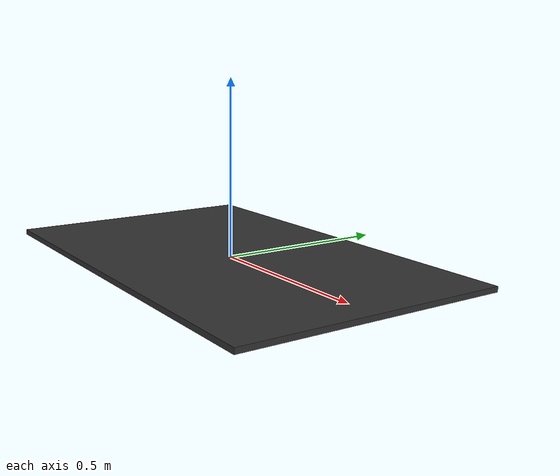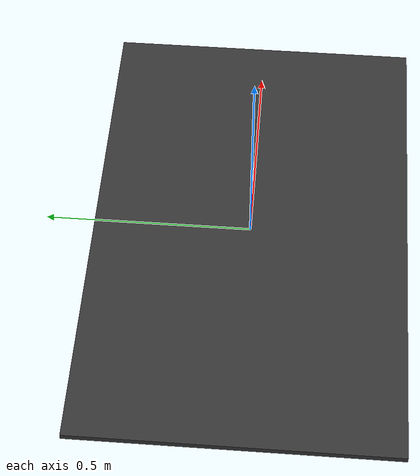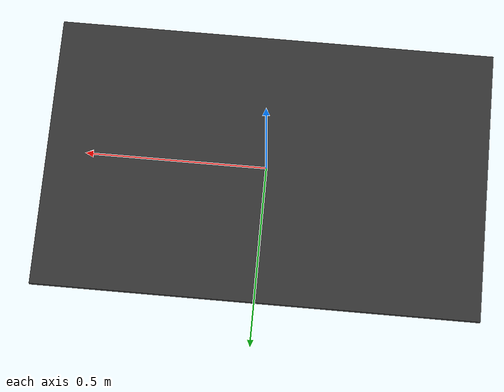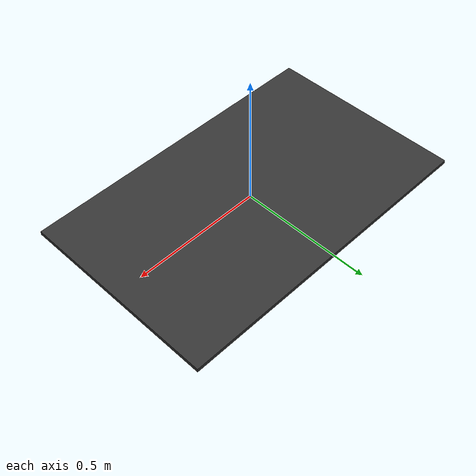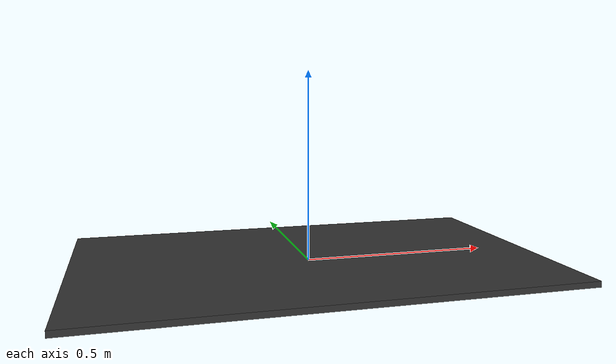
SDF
<?xml version="1.0"?>
<sdf version="1.7">
  <model name="table_model">
    <!--
    Axes:
      +X - Pointing towards front (slope)
      +Y - Pointing to left side
      +Z - Up
    Origin:
      (0, 0, 0) at the center bottom of the bin
    -->
    <link name="base">
      <inertial>
        <mass>18.70</mass>
        <inertia>
          <ixx>0.79</ixx>
          <ixy>0</ixy>
          <ixz>0</ixz>
          <iyy>0.53</iyy>
          <iyz>0</iyz>
          <izz>1.2</izz>
        </inertia>
      </inertial>
      <visual name="bottom">
        <pose>0 0 0 0 0 0</pose><!-- shifted a bit to the left-->
        <geometry>
          <box>
            <size>1.22 0.762 0.015</size>
          </box>
        </geometry>
        <material>
          <diffuse>0.2 0.2 0.2 1.0</diffuse>
        </material>
      </visual>
    </link>
  </model>
</sdf>
